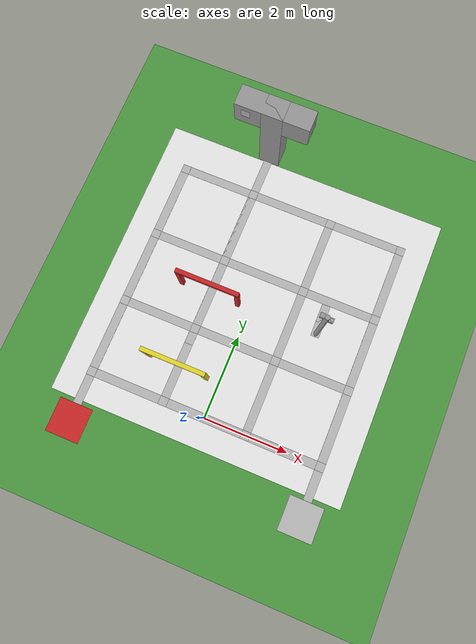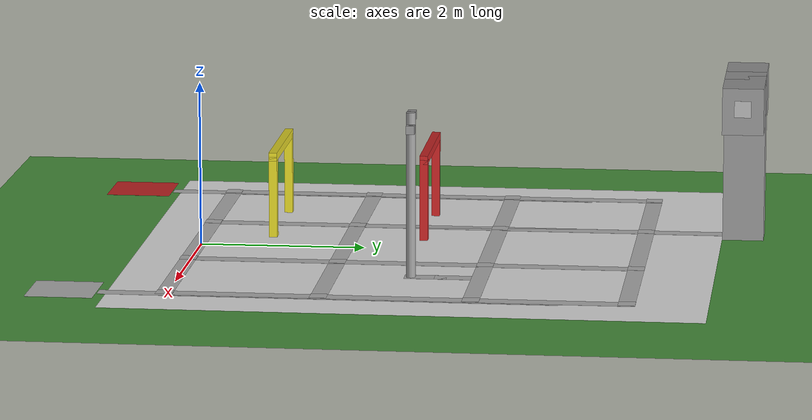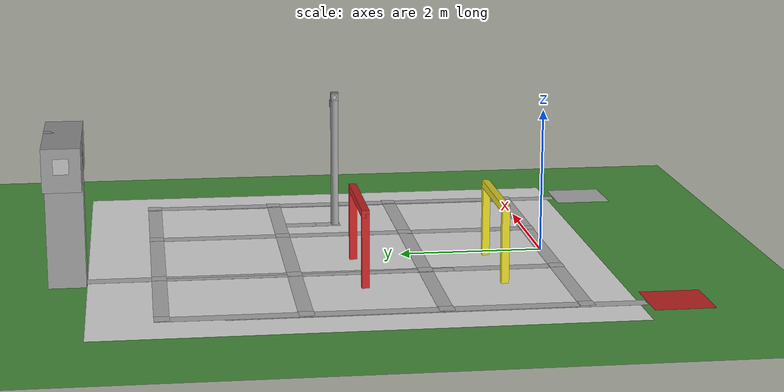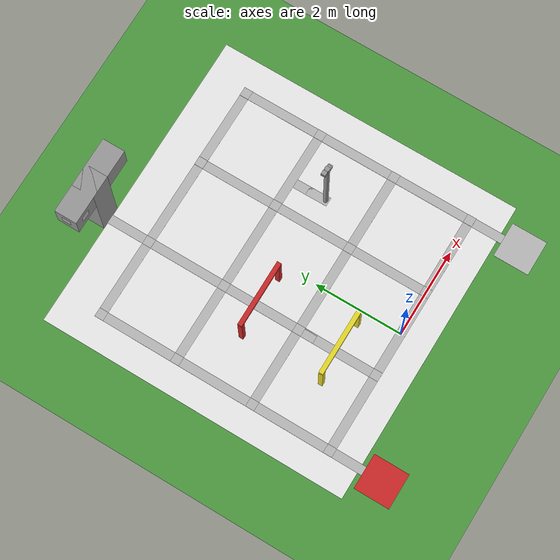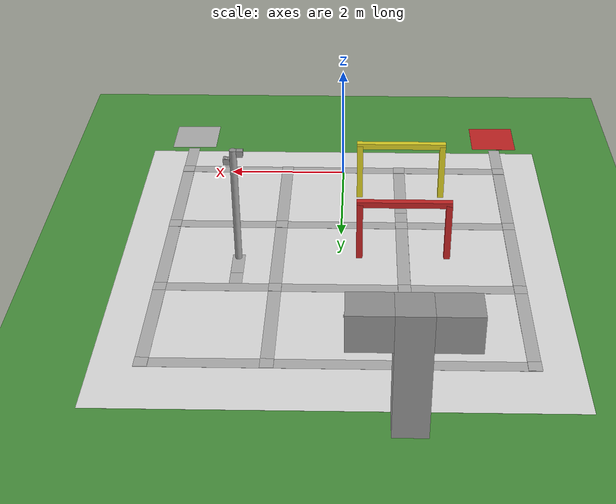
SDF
<sdf version="1.7">
 <world name="default">
  <physics type="ode">
   <ode>
    <solver>
     <type>quick</type>
     <iters>100</iters>
     <sor>1</sor>
     <use_dynamic_moi_rescaling>0</use_dynamic_moi_rescaling>
    </solver>
    <constraints>
     <cfm>0</cfm>
     <erp>0.9</erp>
     <contact_max_correcting_vel>0.1</contact_max_correcting_vel>
     <contact_surface_layer>0</contact_surface_layer>
    </constraints>
   </ode>
   <real_time_update_rate>1000</real_time_update_rate>
   <max_step_size>0.001</max_step_size>
   <real_time_factor>1</real_time_factor>
  </physics>
  <scene><ambient>0.95 0.95 0.95 1</ambient><background>0.3 0.3 0.3 1</background><shadows>0</shadows></scene>
  <model name="ground_plane">
   <static>1</static>
   <link name="link">
    <collision name="collision">
     <geometry><plane><normal>0 0 1</normal><size>500 500</size></plane></geometry>
     <surface><friction><ode><mu>1</mu><mu2>1</mu2></ode></friction></surface>
    </collision>
    <visual name="grass">
     <pose>0 0 0.01 0 -0 0</pose>
     <cast_shadows>0</cast_shadows>
     <geometry><plane><normal>0 0 1</normal><size>500 500</size></plane></geometry>
     <material>
      <script><uri>file://media/materials/scripts/gazebo.material</uri><name>Gazebo/Grass</name></script>
     </material>
    </visual>
   </link>
  </model>
  <light name="sun" type="directional">
   <pose>0 0 10 0 -0 0</pose>
   <diffuse>0.8 0.8 0.8 1</diffuse>
   <specular>0.2 0.2 0.2 1</specular>
   <attenuation>
    <range>1000</range>
    <constant>0.9</constant>
    <linear>0.01</linear>
    <quadratic>0.001</quadratic>
   </attenuation>
   <direction>-0.5 0.1 -0.9</direction>
   <spot><inner_angle>0</inner_angle><outer_angle>0</outer_angle><falloff>0</falloff></spot>
  </light>
  <model name="white_square">
   <frame name="white_square::__model__" attached_to="white_square::white_square_link">
    <pose relative_to="__model__">0 0 0 0 -0 0</pose>
   </frame>
   <static>1</static>
   <link name="white_square::white_square_link">
    <pose relative_to="white_square::__model__">0 0 0.001 0 -0 1.5708</pose>
    <visual name="visual_white_square">
     <cast_shadows>0</cast_shadows>
     <geometry><box><size>7 7 0.001</size></box></geometry>
     <material>
      <script>
       <uri>model://white_square/materials/scripts</uri>
       <uri>model://white_square/materials/textures</uri>
       <name>white_square/white_square</name>
      </script>
     </material>
    </visual>
   </link>
   <pose>0.015123 2.81106 0.03 0 -0 0</pose>
  </model>
  <model name="red_H">
   <frame name="red_cross::__model__" attached_to="red_cross::red_cross_link">
    <pose relative_to="__model__">0 0 0 0 -0 0</pose>
   </frame>
   <static>1</static>
   <link name="red_cross::red_cross_link">
    <pose relative_to="red_cross::__model__">0 0 0.001 0 -0 1.5708</pose>
    <visual name="visual_red_cross">
     <cast_shadows>0</cast_shadows>
     <geometry><box><size>0.8 0.8 0.001</size></box></geometry>
     <material>
      <script>
       <uri>model://red_cross/materials/scripts</uri>
       <uri>model://red_cross/materials/textures</uri>
       <name>red_cross/red_cross</name>
      </script>
     </material>
    </visual>
   </link>
   <pose>-2.785 -1.185 0.06 0 -0 0</pose>
  </model>
  <model name="blue_H">
   <frame name="H_azul::__model__" attached_to="H_azul::H_azul_link">
    <pose relative_to="__model__">0 0 0 0 -0 0</pose>
   </frame>
   <static>1</static>
   <link name="H_azul::H_azul_link">
    <pose relative_to="H_azul::__model__">0 0 0.001 0 -0 1.5708</pose>
    <visual name="visual_H_azul">
     <cast_shadows>0</cast_shadows>
     <geometry><box><size>0.8 0.8 0.001</size></box></geometry>
     <material>
      <script>
       <uri>model://H_azul/materials/scripts</uri>
       <uri>model://H_azul/materials/textures</uri>
       <name>H_azul/H_azul</name>
      </script>
     </material>
    </visual>
   </link>
   <pose>2.785 -1.185 0.06 0 -0 0</pose>
  </model>
  <model name="red_gate">
   <frame name="red_gate::__model__" attached_to="red_gate::link">
    <pose relative_to="__model__">0 0 0 0 -0 0</pose>
   </frame>
   <static>1</static>
   <link name="red_gate::link">
    <visual name="left_bar">
     <pose>-0.7 0 0.5 0 -0 0</pose>
     <geometry><box><size>0.1 0.1 1</size></box></geometry>
     <material>
      <script><uri>file://media/materials/scripts/gazebo.material</uri><name>Gazebo/Red</name></script>
     </material>
    </visual>
    <collision name="left_collision">
     <pose>-0.7 0 0.5 0 -0 0</pose>
     <geometry><box><size>0.1 0.1 1</size></box></geometry>
    </collision>
    <visual name="right_bar">
     <pose>0.7 0 0.5 0 -0 0</pose>
     <geometry><box><size>0.1 0.1 1</size></box></geometry>
     <material>
      <script><uri>file://media/materials/scripts/gazebo.material</uri><name>Gazebo/Red</name></script>
     </material>
    </visual>
    <collision name="right_collision">
     <pose>0.7 0 0.5 0 -0 0</pose>
     <geometry><box><size>0.1 0.1 1</size></box></geometry>
    </collision>
    <visual name="top_bar">
     <pose>0 0 1 0 -0 0</pose>
     <geometry><box><size>1.5 0.1 0.1</size></box></geometry>
     <material>
      <script><uri>file://media/materials/scripts/gazebo.material</uri><name>Gazebo/Red</name></script>
     </material>
    </visual>
    <collision name="top_collision">
     <pose>0 0 1 0 -0 0</pose>
     <geometry><box><size>1.5 0.1 0.1</size></box></geometry>
    </collision>
    <pose relative_to="red_gate::__model__">0 0 0 0 -0 0</pose>
   </link>
   <pose>-1 2.7 0.05 0 -0 0</pose>
  </model>
  <model name="yellow_gate">
   <frame name="yellow_gate::__model__" attached_to="yellow_gate::link">
    <pose relative_to="__model__">0 0 0 0 -0 0</pose>
   </frame>
   <static>1</static>
   <link name="yellow_gate::link">
    <visual name="left_bar">
     <pose>-0.7 0 0.5 0 -0 0</pose>
     <geometry><box><size>0.1 0.1 1</size></box></geometry>
     <material>
      <script><uri>file://media/materials/scripts/gazebo.material</uri><name>Gazebo/Yellow</name></script>
     </material>
    </visual>
    <collision name="left_collision">
     <pose>-0.7 0 0.5 0 -0 0</pose>
     <geometry><box><size>0.1 0.1 1</size></box></geometry>
    </collision>
    <visual name="right_bar">
     <pose>0.7 0 0.5 0 -0 0</pose>
     <geometry><box><size>0.1 0.1 1</size></box></geometry>
     <material>
      <script><uri>file://media/materials/scripts/gazebo.material</uri><name>Gazebo/Yellow</name></script>
     </material>
    </visual>
    <collision name="right_collision">
     <pose>0.7 0 0.5 0 -0 0</pose>
     <geometry><box><size>0.1 0.1 1</size></box></geometry>
    </collision>
    <visual name="top_bar">
     <pose>0 0 1 0 -0 0</pose>
     <geometry><box><size>1.5 0.1 0.1</size></box></geometry>
     <material>
      <script><uri>file://media/materials/scripts/gazebo.material</uri><name>Gazebo/Yellow</name></script>
     </material>
    </visual>
    <collision name="top_collision">
     <pose>0 0 1 0 -0 0</pose>
     <geometry><box><size>1.5 0.1 0.1</size></box></geometry>
    </collision>
    <pose relative_to="yellow_gate::__model__">0 0 0 0 -0 0</pose>
   </link>
   <pose>-1 0.85 0.05 0 -0 0</pose>
  </model>
  <model name="street_line0">
   <frame name="street::__model__" attached_to="street::street_link">
    <pose relative_to="__model__">0 0 0 0 -0 0</pose>
   </frame>
   <static>1</static>
   <link name="street::street_link">
    <pose relative_to="street::__model__">0 0 0.001 0 -0 1.5708</pose>
    <visual name="visual_street">
     <cast_shadows>0</cast_shadows>
     <geometry><box><size>5.37 0.2 0.001</size></box></geometry>
     <material>
      <script><uri>model://street/materials/scripts/model.material</uri><name>street/street_FIRA</name></script>
     </material>
    </visual>
    <geometry><box><size>5.37 0.2 1e-3</size></box></geometry>
   </link>
   <pose>0 5.37 0.05 0 -0 1.57</pose>
  </model>
  <model name="street_line1">
   <frame name="street::__model__" attached_to="street::street_link">
    <pose relative_to="__model__">0 0 0 0 -0 0</pose>
   </frame>
   <static>1</static>
   <link name="street::street_link">
    <pose relative_to="street::__model__">0 0 0.001 0 -0 1.5708</pose>
    <visual name="visual_street">
     <cast_shadows>0</cast_shadows>
     <geometry><box><size>5.37 0.2 0.001</size></box></geometry>
     <material>
      <script><uri>model://street/materials/scripts/model.material</uri><name>street/street_FIRA</name></script>
     </material>
    </visual>
    <geometry><box><size>5.37 0.2 1e-3</size></box></geometry>
   </link>
   <pose>0 3.57 0.05 0 -0 1.57</pose>
  </model>
  <model name="street_line2">
   <frame name="street::__model__" attached_to="street::street_link">
    <pose relative_to="__model__">0 0 0 0 -0 0</pose>
   </frame>
   <static>1</static>
   <link name="street::street_link">
    <pose relative_to="street::__model__">0 0 0.001 0 -0 1.5708</pose>
    <visual name="visual_street">
     <cast_shadows>0</cast_shadows>
     <geometry><box><size>5.37 0.2 0.001</size></box></geometry>
     <material>
      <script><uri>model://street/materials/scripts/model.material</uri><name>street/street_FIRA</name></script>
     </material>
    </visual>
    <geometry><box><size>5.37 0.2 1e-3</size></box></geometry>
   </link>
   <pose>0 1.8 0.05 0 -0 1.57</pose>
  </model>
  <model name="street_line3">
   <frame name="street::__model__" attached_to="street::street_link">
    <pose relative_to="__model__">0 0 0 0 -0 0</pose>
   </frame>
   <static>1</static>
   <link name="street::street_link">
    <pose relative_to="street::__model__">0 0 0.001 0 -0 1.5708</pose>
    <visual name="visual_street">
     <cast_shadows>0</cast_shadows>
     <geometry><box><size>5.37 0.2 0.001</size></box></geometry>
     <material>
      <script><uri>model://street/materials/scripts/model.material</uri><name>street/street_FIRA</name></script>
     </material>
    </visual>
    <geometry><box><size>5.37 0.2 1e-3</size></box></geometry>
   </link>
   <pose>0 0 0.05 0 -0 1.57</pose>
  </model>
  <model name="street_column0">
   <frame name="street::__model__" attached_to="street::street_link">
    <pose relative_to="__model__">0 0 0 0 -0 0</pose>
   </frame>
   <static>1</static>
   <link name="street::street_link">
    <pose relative_to="street::__model__">0 0 0.001 0 -0 1.5708</pose>
    <visual name="visual_street">
     <cast_shadows>0</cast_shadows>
     <geometry><box><size>5.37 0.2 0.001</size></box></geometry>
     <material>
      <script><uri>model://street/materials/scripts/model.material</uri><name>street/street_FIRA</name></script>
     </material>
    </visual>
    <geometry><box><size>5.37 0.2 1e-3</size></box></geometry>
   </link>
   <pose>-2.785 2.785 0.05 0 -0 0</pose>
  </model>
  <model name="street_column0ext">
   <frame name="street::__model__" attached_to="street::street_link">
    <pose relative_to="__model__">0 0 0 0 -0 0</pose>
   </frame>
   <static>1</static>
   <link name="street::street_link">
    <pose relative_to="street::__model__">0 0 0.001 0 -0 1.5708</pose>
    <visual name="visual_street">
     <cast_shadows>0</cast_shadows>
     <geometry><box><size>5.37 0.2 0.001</size></box></geometry>
     <material>
      <script><uri>model://street/materials/scripts/model.material</uri><name>street/street_FIRA</name></script>
     </material>
    </visual>
    <geometry><box><size>5.37 0.2 1e-3</size></box></geometry>
   </link>
   <pose>-2.785 1.9 0.04 0 -0 0</pose>
  </model>
  <model name="street_column1">
   <frame name="street::__model__" attached_to="street::street_link">
    <pose relative_to="__model__">0 0 0 0 -0 0</pose>
   </frame>
   <static>1</static>
   <link name="street::street_link">
    <pose relative_to="street::__model__">0 0 0.001 0 -0 1.5708</pose>
    <visual name="visual_street">
     <cast_shadows>0</cast_shadows>
     <geometry><box><size>5.37 0.2 0.001</size></box></geometry>
     <material>
      <script><uri>model://street/materials/scripts/model.material</uri><name>street/street_FIRA</name></script>
     </material>
    </visual>
    <geometry><box><size>5.37 0.2 1e-3</size></box></geometry>
   </link>
   <pose>-1 2.785 0.05 0 -0 0</pose>
  </model>
  <model name="street_column2">
   <frame name="street::__model__" attached_to="street::street_link">
    <pose relative_to="__model__">0 0 0 0 -0 0</pose>
   </frame>
   <static>1</static>
   <link name="street::street_link">
    <pose relative_to="street::__model__">0 0 0.001 0 -0 1.5708</pose>
    <visual name="visual_street">
     <cast_shadows>0</cast_shadows>
     <geometry><box><size>5.37 0.2 0.001</size></box></geometry>
     <material>
      <script><uri>model://street/materials/scripts/model.material</uri><name>street/street_FIRA</name></script>
     </material>
    </visual>
    <geometry><box><size>5.37 0.2 1e-3</size></box></geometry>
   </link>
   <pose>1 2.785 0.05 0 -0 0</pose>
  </model>
  <model name="street_column3">
   <frame name="street::__model__" attached_to="street::street_link">
    <pose relative_to="__model__">0 0 0 0 -0 0</pose>
   </frame>
   <static>1</static>
   <link name="street::street_link">
    <pose relative_to="street::__model__">0 0 0.001 0 -0 1.5708</pose>
    <visual name="visual_street">
     <cast_shadows>0</cast_shadows>
     <geometry><box><size>5.37 0.2 0.001</size></box></geometry>
     <material>
      <script><uri>model://street/materials/scripts/model.material</uri><name>street/street_FIRA</name></script>
     </material>
    </visual>
    <geometry><box><size>5.37 0.2 1e-3</size></box></geometry>
   </link>
   <pose>2.785 2.785 0.05 0 -0 0</pose>
  </model>
  <model name="street_column3ext">
   <frame name="street::__model__" attached_to="street::street_link">
    <pose relative_to="__model__">0 0 0 0 -0 0</pose>
   </frame>
   <static>1</static>
   <link name="street::street_link">
    <pose relative_to="street::__model__">0 0 0.001 0 -0 1.5708</pose>
    <visual name="visual_street">
     <cast_shadows>0</cast_shadows>
     <geometry><box><size>5.37 0.2 0.001</size></box></geometry>
     <material>
      <script><uri>model://street/materials/scripts/model.material</uri><name>street/street_FIRA</name></script>
     </material>
    </visual>
    <geometry><box><size>5.37 0.2 1e-3</size></box></geometry>
   </link>
   <pose>2.785 1.9 0.04 0 -0 0</pose>
  </model>
  <model name="qr_30">
   <frame name="qr_30::__model__" attached_to="qr_30::qr_30_link">
    <pose relative_to="__model__">0 0 0 0 -0 0</pose>
   </frame>
   <static>1</static>
   <link name="qr_30::qr_30_link">
    <pose relative_to="qr_30::__model__">0 0 0.001 0 -0 1.5708</pose>
    <visual name="visual_qr_30">
     <cast_shadows>0</cast_shadows>
     <geometry><box><size>0.2 0.2 0.001</size></box></geometry>
     <material>
      <script>
       <uri>model://qrs_FIRA24/qr_30/materials/scripts</uri>
       <uri>model://qrs_FIRA24/qr_30/materials/textures</uri>
       <name>qr_30/qr_30</name>
      </script>
     </material>
    </visual>
   </link>
   <pose>-2.785 0 0.06 0 -0 0</pose>
  </model>
  <model name="qr_31">
   <frame name="qr_31::__model__" attached_to="qr_31::qr_31_link">
    <pose relative_to="__model__">0 0 0 0 -0 0</pose>
   </frame>
   <static>1</static>
   <link name="qr_31::qr_31_link">
    <pose relative_to="qr_31::__model__">0 0 0.001 0 -0 1.5708</pose>
    <visual name="visual_qr_31">
     <cast_shadows>0</cast_shadows>
     <geometry><box><size>0.2 0.2 0.001</size></box></geometry>
     <material>
      <script>
       <uri>model://qrs_FIRA24/qr_31/materials/scripts</uri>
       <uri>model://qrs_FIRA24/qr_31/materials/textures</uri>
       <name>qr_31/qr_31</name>
      </script>
     </material>
    </visual>
   </link>
   <pose>-1 0 0.06 0 -0 0</pose>
  </model>
  <model name="qr_32">
   <frame name="qr_32::__model__" attached_to="qr_32::qr_32_link">
    <pose relative_to="__model__">0 0 0 0 -0 0</pose>
   </frame>
   <static>1</static>
   <link name="qr_32::qr_32_link">
    <pose relative_to="qr_32::__model__">0 0 0.001 0 -0 1.5708</pose>
    <visual name="visual_qr_32">
     <cast_shadows>0</cast_shadows>
     <geometry><box><size>0.2 0.2 0.001</size></box></geometry>
     <material>
      <script>
       <uri>model://qrs_FIRA24/qr_32/materials/scripts</uri>
       <uri>model://qrs_FIRA24/qr_32/materials/textures</uri>
       <name>qr_32/qr_32</name>
      </script>
     </material>
    </visual>
   </link>
   <pose>1 0 0.06 0 -0 0</pose>
  </model>
  <model name="qr_33">
   <frame name="qr_33::__model__" attached_to="qr_33::qr_33_link">
    <pose relative_to="__model__">0 0 0 0 -0 0</pose>
   </frame>
   <static>1</static>
   <link name="qr_33::qr_33_link">
    <pose relative_to="qr_33::__model__">0 0 0.001 0 -0 1.5708</pose>
    <visual name="visual_qr_33">
     <cast_shadows>0</cast_shadows>
     <geometry><box><size>0.2 0.2 0.001</size></box></geometry>
     <material>
      <script>
       <uri>model://qrs_FIRA24/qr_33/materials/scripts</uri>
       <uri>model://qrs_FIRA24/qr_33/materials/textures</uri>
       <name>qr_33/qr_33</name>
      </script>
     </material>
    </visual>
   </link>
   <pose>2.785 0 0.06 0 -0 0</pose>
  </model>
  <model name="qr_20">
   <frame name="qr_20::__model__" attached_to="qr_20::qr_20_link">
    <pose relative_to="__model__">0 0 0 0 -0 0</pose>
   </frame>
   <static>1</static>
   <link name="qr_20::qr_20_link">
    <pose relative_to="qr_20::__model__">0 0 0.001 0 -0 1.5708</pose>
    <visual name="visual_qr_20">
     <cast_shadows>0</cast_shadows>
     <geometry><box><size>0.2 0.2 0.001</size></box></geometry>
     <material>
      <script>
       <uri>model://qrs_FIRA24/qr_20/materials/scripts</uri>
       <uri>model://qrs_FIRA24/qr_20/materials/textures</uri>
       <name>qr_20/qr_20</name>
      </script>
     </material>
    </visual>
   </link>
   <pose>-2.785 1.8 0.06 0 -0 0</pose>
  </model>
  <model name="qr_21">
   <frame name="qr_21::__model__" attached_to="qr_21::qr_21_link">
    <pose relative_to="__model__">0 0 0 0 -0 0</pose>
   </frame>
   <static>1</static>
   <link name="qr_21::qr_21_link">
    <pose relative_to="qr_21::__model__">0 0 0.001 0 -0 1.5708</pose>
    <visual name="visual_qr_21">
     <cast_shadows>0</cast_shadows>
     <geometry><box><size>0.2 0.2 0.001</size></box></geometry>
     <material>
      <script>
       <uri>model://qrs_FIRA24/qr_21/materials/scripts</uri>
       <uri>model://qrs_FIRA24/qr_21/materials/textures</uri>
       <name>qr_21/qr_21</name>
      </script>
     </material>
    </visual>
   </link>
   <pose>-1 1.8 0.06 0 -0 0</pose>
  </model>
  <model name="qr_22">
   <frame name="qr_22::__model__" attached_to="qr_22::qr_22_link">
    <pose relative_to="__model__">0 0 0 0 -0 0</pose>
   </frame>
   <static>1</static>
   <link name="qr_22::qr_22_link">
    <pose relative_to="qr_22::__model__">0 0 0.001 0 -0 1.5708</pose>
    <visual name="visual_qr_22">
     <cast_shadows>0</cast_shadows>
     <geometry><box><size>0.2 0.2 0.001</size></box></geometry>
     <material>
      <script>
       <uri>model://qrs_FIRA24/qr_22/materials/scripts</uri>
       <uri>model://qrs_FIRA24/qr_22/materials/textures</uri>
       <name>qr_22/qr_22</name>
      </script>
     </material>
    </visual>
   </link>
   <pose>1 1.8 0.06 0 -0 0</pose>
  </model>
  <model name="qr_23">
   <frame name="qr_23::__model__" attached_to="qr_23::qr_23_link">
    <pose relative_to="__model__">0 0 0 0 -0 0</pose>
   </frame>
   <static>1</static>
   <link name="qr_23::qr_23_link">
    <pose relative_to="qr_23::__model__">0 0 0.001 0 -0 1.5708</pose>
    <visual name="visual_qr_23">
     <cast_shadows>0</cast_shadows>
     <geometry><box><size>0.2 0.2 0.001</size></box></geometry>
     <material>
      <script>
       <uri>model://qrs_FIRA24/qr_23/materials/scripts</uri>
       <uri>model://qrs_FIRA24/qr_23/materials/textures</uri>
       <name>qr_23/qr_23</name>
      </script>
     </material>
    </visual>
   </link>
   <pose>2.785 1.8 0.06 0 -0 0</pose>
  </model>
  <model name="qr_10">
   <frame name="qr_10::__model__" attached_to="qr_10::qr_10_link">
    <pose relative_to="__model__">0 0 0 0 -0 0</pose>
   </frame>
   <static>1</static>
   <link name="qr_10::qr_10_link">
    <pose relative_to="qr_10::__model__">0 0 0.001 0 -0 1.5708</pose>
    <visual name="visual_qr_10">
     <cast_shadows>0</cast_shadows>
     <geometry><box><size>0.2 0.2 0.001</size></box></geometry>
     <material>
      <script>
       <uri>model://qrs_FIRA24/qr_10/materials/scripts</uri>
       <uri>model://qrs_FIRA24/qr_10/materials/textures</uri>
       <name>qr_10/qr_10</name>
      </script>
     </material>
    </visual>
   </link>
   <pose>-2.785 3.57 0.06 0 -0 0</pose>
  </model>
  <model name="qr_11">
   <frame name="qr_11::__model__" attached_to="qr_11::qr_11_link">
    <pose relative_to="__model__">0 0 0 0 -0 0</pose>
   </frame>
   <static>1</static>
   <link name="qr_11::qr_11_link">
    <pose relative_to="qr_11::__model__">0 0 0.001 0 -0 1.5708</pose>
    <visual name="visual_qr_11">
     <cast_shadows>0</cast_shadows>
     <geometry><box><size>0.2 0.2 0.001</size></box></geometry>
     <material>
      <script>
       <uri>model://qrs_FIRA24/qr_11/materials/scripts</uri>
       <uri>model://qrs_FIRA24/qr_11/materials/textures</uri>
       <name>qr_11/qr_11</name>
      </script>
     </material>
    </visual>
   </link>
   <pose>-1 3.57 0.06 0 -0 0</pose>
  </model>
  <model name="qr_12">
   <frame name="qr_12::__model__" attached_to="qr_12::qr_12_link">
    <pose relative_to="__model__">0 0 0 0 -0 0</pose>
   </frame>
   <static>1</static>
   <link name="qr_12::qr_12_link">
    <pose relative_to="qr_12::__model__">0 0 0.001 0 -0 1.5708</pose>
    <visual name="visual_qr_12">
     <cast_shadows>0</cast_shadows>
     <geometry><box><size>0.2 0.2 0.001</size></box></geometry>
     <material>
      <script>
       <uri>model://qrs_FIRA24/qr_12/materials/scripts</uri>
       <uri>model://qrs_FIRA24/qr_12/materials/textures</uri>
       <name>qr_12/qr_12</name>
      </script>
     </material>
    </visual>
   </link>
   <pose>1 3.57 0.06 0 -0 0</pose>
  </model>
  <model name="qr_13">
   <frame name="qr_13::__model__" attached_to="qr_13::qr_13_link">
    <pose relative_to="__model__">0 0 0 0 -0 0</pose>
   </frame>
   <static>1</static>
   <link name="qr_13::qr_13_link">
    <pose relative_to="qr_13::__model__">0 0 0.001 0 -0 1.5708</pose>
    <visual name="visual_qr_13">
     <cast_shadows>0</cast_shadows>
     <geometry><box><size>0.2 0.2 0.001</size></box></geometry>
     <material>
      <script>
       <uri>model://qrs_FIRA24/qr_13/materials/scripts</uri>
       <uri>model://qrs_FIRA24/qr_13/materials/textures</uri>
       <name>qr_13/qr_13</name>
      </script>
     </material>
    </visual>
   </link>
   <pose>2.785 3.57 0.06 0 -0 0</pose>
  </model>
  <model name="qr_00">
   <frame name="qr_00::__model__" attached_to="qr_00::qr_00_link">
    <pose relative_to="__model__">0 0 0 0 -0 0</pose>
   </frame>
   <static>1</static>
   <link name="qr_00::qr_00_link">
    <pose relative_to="qr_00::__model__">0 0 0.001 0 -0 1.5708</pose>
    <visual name="visual_qr_00">
     <cast_shadows>0</cast_shadows>
     <geometry><box><size>0.2 0.2 0.001</size></box></geometry>
     <material>
      <script>
       <uri>model://qrs_FIRA24/qr_00/materials/scripts</uri>
       <uri>model://qrs_FIRA24/qr_00/materials/textures</uri>
       <name>qr_00/qr_00</name>
      </script>
     </material>
    </visual>
   </link>
   <pose>-2.785 5.37 0.06 0 -0 0</pose>
  </model>
  <model name="qr_01">
   <frame name="qr_01::__model__" attached_to="qr_01::qr_01_link">
    <pose relative_to="__model__">0 0 0 0 -0 0</pose>
   </frame>
   <static>1</static>
   <link name="qr_01::qr_01_link">
    <pose relative_to="qr_01::__model__">0 0 0.001 0 -0 1.5708</pose>
    <visual name="visual_qr_01">
     <cast_shadows>0</cast_shadows>
     <geometry><box><size>0.2 0.2 0.001</size></box></geometry>
     <material>
      <script>
       <uri>model://qrs_FIRA24/qr_01/materials/scripts</uri>
       <uri>model://qrs_FIRA24/qr_01/materials/textures</uri>
       <name>qr_01/qr_01</name>
      </script>
     </material>
    </visual>
   </link>
   <pose>-1 5.37 0.06 0 -0 0</pose>
  </model>
  <model name="qr_02">
   <frame name="qr_02::__model__" attached_to="qr_02::qr_02_link">
    <pose relative_to="__model__">0 0 0 0 -0 0</pose>
   </frame>
   <static>1</static>
   <link name="qr_02::qr_02_link">
    <pose relative_to="qr_02::__model__">0 0 0.001 0 -0 1.5708</pose>
    <visual name="visual_qr_02">
     <cast_shadows>0</cast_shadows>
     <geometry><box><size>0.2 0.2 0.001</size></box></geometry>
     <material>
      <script>
       <uri>model://qrs_FIRA24/qr_02/materials/scripts</uri>
       <uri>model://qrs_FIRA24/qr_02/materials/textures</uri>
       <name>qr_02/qr_02</name>
      </script>
     </material>
    </visual>
   </link>
   <pose>1 5.37 0.06 0 -0 0</pose>
  </model>
  <model name="qr_03">
   <frame name="qr_03::__model__" attached_to="qr_03::qr_03_link">
    <pose relative_to="__model__">0 0 0 0 -0 0</pose>
   </frame>
   <static>1</static>
   <link name="qr_03::qr_03_link">
    <pose relative_to="qr_03::__model__">0 0 0.001 0 -0 1.5708</pose>
    <visual name="visual_qr_03">
     <cast_shadows>0</cast_shadows>
     <geometry><box><size>0.2 0.2 0.001</size></box></geometry>
     <material>
      <script>
       <uri>model://qrs_FIRA24/qr_03/materials/scripts</uri>
       <uri>model://qrs_FIRA24/qr_03/materials/textures</uri>
       <name>qr_03/qr_03</name>
      </script>
     </material>
    </visual>
   </link>
   <pose>2.785 5.37 0.06 0 -0 0</pose>
  </model>
  <gravity>0 0 -9.8</gravity>
  <magnetic_field>6e-06 2.3e-05 -4.2e-05</magnetic_field>
  <atmosphere type="adiabatic"/>
  <spherical_coordinates>
   <surface_model>EARTH_WGS84</surface_model>
   <latitude_deg>0</latitude_deg>
   <longitude_deg>0</longitude_deg>
   <elevation>0</elevation>
   <heading_deg>0</heading_deg>
  </spherical_coordinates>
  <model name="FIRA_pole">
   <link name="link_2">
    <inertial>
     <mass>0.0126915</mass>
     <inertia>
      <ixx>0.00424056</ixx>
      <ixy>0</ixy>
      <ixz>0</ixz>
      <iyy>0.00424056</iyy>
      <iyz>0</iyz>
      <izz>2.014e-05</izz>
     </inertia>
    </inertial>
    <pose>0 0 -0.011903 0 -0 0</pose>
    <gravity>0</gravity>
    <visual name="visual">
     <geometry><cylinder><radius>0.056339</radius><length>2</length></cylinder></geometry>
     <material>
      <lighting>1</lighting>
      <script><uri>file://media/materials/scripts/gazebo.material</uri><name>Gazebo/Grey</name></script>
      <shader type="pixel"><normal_map>__default__</normal_map></shader>
      <ambient>0.3 0.3 0.3 1</ambient>
      <diffuse>0.7 0.7 0.7 1</diffuse>
      <specular>0.01 0.01 0.01 1</specular>
      <emissive>0 0 0 1</emissive>
     </material>
    </visual>
    <collision name="collision">
     <geometry><cylinder><radius>0.056339</radius><length>2</length></cylinder></geometry>
     <surface>
      <friction>
       <ode><mu>1</mu><mu2>1</mu2><fdir1>0 0 0</fdir1><slip1>0</slip1><slip2>0</slip2></ode>
       <torsional>
        <coefficient>1</coefficient>
        <patch_radius>0</patch_radius>
        <surface_radius>0</surface_radius>
        <use_patch_radius>1</use_patch_radius>
        <ode><slip>0</slip></ode>
       </torsional>
      </friction>
      <bounce><restitution_coefficient>0</restitution_coefficient><threshold>1e+06</threshold></bounce>
      <contact>
       <collide_without_contact>0</collide_without_contact>
       <collide_without_contact_bitmask>1</collide_without_contact_bitmask>
       <collide_bitmask>1</collide_bitmask>
       <ode>
        <soft_cfm>0</soft_cfm>
        <soft_erp>0.2</soft_erp>
        <kp>1e+13</kp>
        <kd>1</kd>
        <max_vel>0.01</max_vel>
        <min_depth>0</min_depth>
       </ode>
       <bullet>
        <split_impulse>1</split_impulse>
        <split_impulse_penetration_threshold>-0.01</split_impulse_penetration_threshold>
        <soft_cfm>0</soft_cfm>
        <soft_erp>0.2</soft_erp>
        <kp>1e+13</kp>
        <kd>1</kd>
       </bullet>
      </contact>
     </surface>
    </collision>
   </link>
   <link name="link_7">
    <inertial>
     <mass>0.00202505</mass>
     <inertia>
      <ixx>5.04e-06</ixx>
      <ixy>0</ixy>
      <ixz>0</ixz>
      <iyy>5.34e-06</iyy>
      <iyz>0</iyz>
      <izz>6.02e-06</izz>
     </inertia>
    </inertial>
    <pose>0.103108 -0.004851 0.939738 0 -0 0</pose>
    <visual name="visual">
     <geometry><box><size>0.1 0.1 0.1</size></box></geometry>
     <material>
      <lighting>1</lighting>
      <script><uri>file://media/materials/scripts/gazebo.material</uri><name>Gazebo/Grey</name></script>
      <shader type="pixel"><normal_map>__default__</normal_map></shader>
      <ambient>0.3 0.3 0.3 1</ambient>
      <diffuse>0.7 0.7 0.7 1</diffuse>
      <specular>0.01 0.01 0.01 1</specular>
      <emissive>0 0 0 1</emissive>
     </material>
    </visual>
    <collision name="collision">
     <geometry><box><size>0.136901 0.130094 0.113701</size></box></geometry>
     <surface>
      <friction>
       <ode><mu>1</mu><mu2>1</mu2><fdir1>0 0 0</fdir1><slip1>0</slip1><slip2>0</slip2></ode>
       <torsional>
        <coefficient>1</coefficient>
        <patch_radius>0</patch_radius>
        <surface_radius>0</surface_radius>
        <use_patch_radius>1</use_patch_radius>
        <ode><slip>0</slip></ode>
       </torsional>
      </friction>
      <bounce><restitution_coefficient>0</restitution_coefficient><threshold>1e+06</threshold></bounce>
      <contact>
       <collide_without_contact>0</collide_without_contact>
       <collide_without_contact_bitmask>1</collide_without_contact_bitmask>
       <collide_bitmask>1</collide_bitmask>
       <ode>
        <soft_cfm>0</soft_cfm>
        <soft_erp>0.2</soft_erp>
        <kp>1e+13</kp>
        <kd>1</kd>
        <max_vel>0.01</max_vel>
        <min_depth>0</min_depth>
       </ode>
       <bullet>
        <split_impulse>1</split_impulse>
        <split_impulse_penetration_threshold>-0.01</split_impulse_penetration_threshold>
        <soft_cfm>0</soft_cfm>
        <soft_erp>0.2</soft_erp>
        <kp>1e+13</kp>
        <kd>1</kd>
       </bullet>
      </contact>
     </surface>
    </collision>
   </link>
   <link name="link_7_clone_0">
    <inertial>
     <mass>0.00202505</mass>
     <inertia>
      <ixx>5.04e-06</ixx>
      <ixy>0</ixy>
      <ixz>0</ixz>
      <iyy>5.34e-06</iyy>
      <iyz>0</iyz>
      <izz>6.02e-06</izz>
     </inertia>
    </inertial>
    <pose>-0.100902 -0.008993 0.802997 0 -0 0</pose>
    <visual name="visual">
     <geometry><box><size>0.1 0.1 0.1</size></box></geometry>
     <material>
      <lighting>1</lighting>
      <script><uri>file://media/materials/scripts/gazebo.material</uri><name>Gazebo/Grey</name></script>
      <shader type="pixel"><normal_map>__default__</normal_map></shader>
      <ambient>0.3 0.3 0.3 1</ambient>
      <diffuse>0.7 0.7 0.7 1</diffuse>
      <specular>0.01 0.01 0.01 1</specular>
      <emissive>0 0 0 1</emissive>
     </material>
    </visual>
    <collision name="collision">
     <geometry><box><size>0.1 0.1 0.1</size></box></geometry>
     <surface>
      <friction>
       <ode><mu>1</mu><mu2>1</mu2><fdir1>0 0 0</fdir1><slip1>0</slip1><slip2>0</slip2></ode>
       <torsional>
        <coefficient>1</coefficient>
        <patch_radius>0</patch_radius>
        <surface_radius>0</surface_radius>
        <use_patch_radius>1</use_patch_radius>
        <ode><slip>0</slip></ode>
       </torsional>
      </friction>
      <bounce><restitution_coefficient>0</restitution_coefficient><threshold>1e+06</threshold></bounce>
      <contact>
       <collide_without_contact>0</collide_without_contact>
       <collide_without_contact_bitmask>1</collide_without_contact_bitmask>
       <collide_bitmask>1</collide_bitmask>
       <ode>
        <soft_cfm>0</soft_cfm>
        <soft_erp>0.2</soft_erp>
        <kp>1e+13</kp>
        <kd>1</kd>
        <max_vel>0.01</max_vel>
        <min_depth>0</min_depth>
       </ode>
       <bullet>
        <split_impulse>1</split_impulse>
        <split_impulse_penetration_threshold>-0.01</split_impulse_penetration_threshold>
        <soft_cfm>0</soft_cfm>
        <soft_erp>0.2</soft_erp>
        <kp>1e+13</kp>
        <kd>1</kd>
       </bullet>
      </contact>
     </surface>
    </collision>
   </link>
   <model name="qr_Victim_6">
    <static>1</static>
    <link name="qr_Victim_6_link">
     <pose>0 0 0.001 0 -0 1.5708</pose>
     <visual name="visual_qr_Victim_6">
      <cast_shadows>0</cast_shadows>
      <geometry><box><size>0.05 0.05 0.001</size></box></geometry>
      <material>
       <script>
        <uri>model://qrs_FIRA24/qr_Victim_6/materials/scripts</uri>
        <uri>model://qrs_FIRA24/qr_Victim_6/materials/textures</uri>
        <name>qr_Victim_6/qr_Victim_6</name>
       </script>
      </material>
     </visual>
    </link>
    <pose>0.153877 -0.01017 0.942722 3.14159 1.55078 3.14159</pose>
   </model>
   <model name="qr_Victim_7">
    <static>1</static>
    <link name="qr_Victim_7_link">
     <pose>0 0 0.001 0 -0 1.5708</pose>
     <visual name="visual_qr_Victim_7">
      <cast_shadows>0</cast_shadows>
      <geometry><box><size>0.05 0.05 0.001</size></box></geometry>
      <material>
       <script>
        <uri>model://qrs_FIRA24/qr_Victim_7/materials/scripts</uri>
        <uri>model://qrs_FIRA24/qr_Victim_7/materials/textures</uri>
        <name>qr_Victim_7/qr_Victim_7</name>
       </script>
      </material>
     </visual>
    </link>
    <pose>-0.104629 -0.01271 0.855069 3.13255 -0.00487 -1.56498</pose>
   </model>
   <static>1</static>
   <pose>1.6341 2.74746 1.02839 0 -0 3.13935</pose>
  </model>
  <model name="FIRA_building">
   <link name="link_0">
    <inertial>
     <mass>0.583841</mass>
     <inertia>
      <ixx>0.0973069</ixx>
      <ixy>0</ixy>
      <ixz>0</ixz>
      <iyy>0.0652376</iyy>
      <iyz>0</iyz>
      <izz>0.0652376</izz>
     </inertia>
     <pose>0 0 2 0 -0 0</pose>
    </inertial>
    <pose>-0.942835 -0.127491 -0 0 -0 0</pose>
    <visual name="visual">
     <geometry><box><size>0.5 0.5 2</size></box></geometry>
     <material>
      <lighting>1</lighting>
      <script><uri>file://media/materials/scripts/gazebo.material</uri><name>Gazebo/Grey</name></script>
      <shader type="pixel"><normal_map>__default__</normal_map></shader>
      <ambient>0.3 0.3 0.3 1</ambient>
      <diffuse>0.7 0.7 0.7 1</diffuse>
      <specular>0.01 0.01 0.01 1</specular>
      <emissive>0 0 0 1</emissive>
     </material>
    </visual>
    <collision name="collision">
     <geometry><box><size>0.583834 1 1</size></box></geometry>
     <surface>
      <friction>
       <ode><mu>1</mu><mu2>1</mu2><fdir1>0 0 0</fdir1><slip1>0</slip1><slip2>0</slip2></ode>
       <torsional>
        <coefficient>1</coefficient>
        <patch_radius>0</patch_radius>
        <surface_radius>0</surface_radius>
        <use_patch_radius>1</use_patch_radius>
        <ode><slip>0</slip></ode>
       </torsional>
      </friction>
      <bounce><restitution_coefficient>0</restitution_coefficient><threshold>1e+06</threshold></bounce>
      <contact>
       <collide_without_contact>0</collide_without_contact>
       <collide_without_contact_bitmask>1</collide_without_contact_bitmask>
       <collide_bitmask>1</collide_bitmask>
       <ode>
        <soft_cfm>0</soft_cfm>
        <soft_erp>0.2</soft_erp>
        <kp>1e+13</kp>
        <kd>1</kd>
        <max_vel>0.01</max_vel>
        <min_depth>0</min_depth>
       </ode>
       <bullet>
        <split_impulse>1</split_impulse>
        <split_impulse_penetration_threshold>-0.01</split_impulse_penetration_threshold>
        <soft_cfm>0</soft_cfm>
        <soft_erp>0.2</soft_erp>
        <kp>1e+13</kp>
        <kd>1</kd>
       </bullet>
      </contact>
     </surface>
    </collision>
   </link>
   <link name="link_1_clone">
    <inertial>
     <mass>1.18726</mass>
     <inertia>
      <ixx>0.211136</ixx>
      <ixy>0</ixy>
      <ixz>0</ixz>
      <iyy>0.482851</iyy>
      <iyz>0</iyz>
      <izz>0.321095</izz>
     </inertia>
    </inertial>
    <pose>-0.576279 -0.127491 0.716297 0 -0 0</pose>
    <visual name="visual">
     <pose>-0.366556 0 0 0 -0 0</pose>
     <geometry><box><size>1.73086 0.499 0.567406</size></box></geometry>
     <material>
      <lighting>1</lighting>
      <script><uri>file://media/materials/scripts/gazebo.material</uri><name>Gazebo/Grey</name></script>
      <shader type="pixel"><normal_map>__default__</normal_map></shader>
      <ambient>0.3 0.3 0.3 1</ambient>
      <diffuse>0.7 0.7 0.7 1</diffuse>
      <specular>0.01 0.01 0.01 1</specular>
      <emissive>0 0 0 1</emissive>
     </material>
    </visual>
    <collision name="collision">
     <geometry><box><size>1.73086 0.499551 1.37276</size></box></geometry>
     <surface>
      <friction>
       <ode><mu>1</mu><mu2>1</mu2><fdir1>0 0 0</fdir1><slip1>0</slip1><slip2>0</slip2></ode>
       <torsional>
        <coefficient>1</coefficient>
        <patch_radius>0</patch_radius>
        <surface_radius>0</surface_radius>
        <use_patch_radius>1</use_patch_radius>
        <ode><slip>0</slip></ode>
       </torsional>
      </friction>
      <bounce><restitution_coefficient>0</restitution_coefficient><threshold>1e+06</threshold></bounce>
      <contact>
       <collide_without_contact>0</collide_without_contact>
       <collide_without_contact_bitmask>1</collide_without_contact_bitmask>
       <collide_bitmask>1</collide_bitmask>
       <ode>
        <soft_cfm>0</soft_cfm>
        <soft_erp>0.2</soft_erp>
        <kp>1e+13</kp>
        <kd>1</kd>
        <max_vel>0.01</max_vel>
        <min_depth>0</min_depth>
       </ode>
       <bullet>
        <split_impulse>1</split_impulse>
        <split_impulse_penetration_threshold>-0.01</split_impulse_penetration_threshold>
        <soft_cfm>0</soft_cfm>
        <soft_erp>0.2</soft_erp>
        <kp>1e+13</kp>
        <kd>1</kd>
       </bullet>
      </contact>
     </surface>
    </collision>
   </link>
   <model name="qr_Victim_1">
    <static>1</static>
    <link name="qr_Victim_1_link">
     <pose>0 0 0.001 0 -0 1.5708</pose>
     <visual name="visual_qr_Victim_1">
      <cast_shadows>0</cast_shadows>
      <geometry><box><size>0.2 0.2 0.001</size></box></geometry>
      <material>
       <script>
        <uri>model://qrs_FIRA24/qr_Victim_1/materials/scripts</uri>
        <uri>model://qrs_FIRA24/qr_Victim_1/materials/textures</uri>
        <name>qr_Victim_1/qr_Victim_1</name>
       </script>
      </material>
     </visual>
    </link>
    <pose>-1.81646 -0.125579 0.769645 0 -1.55321 0</pose>
   </model>
   <model name="qr_Victim_2">
    <static>1</static>
    <link name="qr_Victim_2_link">
     <pose>0 0 0.001 0 -0 1.5708</pose>
     <visual name="visual_qr_Victim_2">
      <cast_shadows>0</cast_shadows>
      <geometry><box><size>0.2 0.2 0.001</size></box></geometry>
      <material>
       <script>
        <uri>model://qrs_FIRA24/qr_Victim_2/materials/scripts</uri>
        <uri>model://qrs_FIRA24/qr_Victim_2/materials/textures</uri>
        <name>qr_Victim_2/qr_Victim_2</name>
       </script>
      </material>
     </visual>
    </link>
    <pose>-0.063176 -0.131087 0.750636 0 1.55267 0</pose>
   </model>
   <model name="qr_Victim_3">
    <static>1</static>
    <link name="qr_Victim_3_link">
     <pose>0 0 0.001 0 -0 1.5708</pose>
     <visual name="visual_qr_Victim_3">
      <cast_shadows>0</cast_shadows>
      <geometry><box><size>0.2 0.2 0.001</size></box></geometry>
      <material>
       <script>
        <uri>model://qrs_FIRA24/qr_Victim_3/materials/scripts</uri>
        <uri>model://qrs_FIRA24/qr_Victim_3/materials/textures</uri>
        <name>qr_Victim_3/qr_Victim_3</name>
       </script>
      </material>
     </visual>
    </link>
    <pose>-1.53922 -0.39629 0.800158 1.54332 -0 0</pose>
   </model>
   <joint name="link_0_JOINT_0" type="fixed">
    <parent>link_0</parent>
    <child>link_1_clone</child>
    <physics>
     <ode><limit><cfm>0</cfm><erp>0.2</erp></limit><suspension><cfm>0</cfm><erp>0.2</erp></suspension></ode>
    </physics>
   </joint>
   <joint name="link_0_JOINT_5" type="fixed">
    <parent>link_0</parent>
    <child>link_1_clone</child>
    <physics>
     <ode><limit><cfm>0</cfm><erp>0.2</erp></limit><suspension><cfm>0</cfm><erp>0.2</erp></suspension></ode>
    </physics>
   </joint>
   <joint name="link_1_clone_JOINT_0" type="revolute">
    <parent>link_1_clone</parent>
    <child>link_0</child>
    <axis>
     <xyz>1 0 0</xyz>
     <limit>
      <lower>-1.79769e+308</lower>
      <upper>1.79769e+308</upper>
      <effort>-1</effort>
      <velocity>-1</velocity>
     </limit>
     <dynamics>
      <spring_reference>0</spring_reference>
      <spring_stiffness>0</spring_stiffness>
      <damping>0</damping>
     </dynamics>
    </axis>
    <physics>
     <ode><limit><cfm>0</cfm><erp>0.2</erp></limit><suspension><cfm>0</cfm><erp>0.2</erp></suspension></ode>
    </physics>
   </joint>
   <joint name="link_1_clone_JOINT_1" type="prismatic">
    <parent>link_1_clone</parent>
    <child>link_0</child>
    <axis>
     <xyz>0 0 1</xyz>
     <limit>
      <lower>-1.79769e+308</lower>
      <upper>1.79769e+308</upper>
      <effort>-1</effort>
      <velocity>-1</velocity>
     </limit>
     <dynamics>
      <spring_reference>0</spring_reference>
      <spring_stiffness>0</spring_stiffness>
      <damping>0</damping>
     </dynamics>
    </axis>
    <physics>
     <ode><limit><cfm>0</cfm><erp>0.2</erp></limit><suspension><cfm>0</cfm><erp>0.2</erp></suspension></ode>
    </physics>
   </joint>
   <joint name="link_1_clone_JOINT_2" type="fixed">
    <parent>link_1_clone</parent>
    <child>link_0</child>
    <physics>
     <ode><limit><cfm>0</cfm><erp>0.2</erp></limit><suspension><cfm>0</cfm><erp>0.2</erp></suspension></ode>
    </physics>
   </joint>
   <static>1</static>
   <pose>-0.038178 6.69332 1.0403 0 -0 0</pose>
  </model>
  <model name="street_column1_clone">
   <frame name="street::__model__" attached_to="street::street_link">
    <pose relative_to="__model__">0 0 0 0 -0 0</pose>
   </frame>
   <static>1</static>
   <link name="street::street_link">
    <pose relative_to="street::__model__">0 0 0.001 0 -0 1.5708</pose>
    <visual name="visual_street">
     <cast_shadows>0</cast_shadows>
     <geometry><box><size>5.37 0.2 0.001</size></box></geometry>
     <material>
      <script><uri>model://street/materials/scripts/model.material</uri><name>street/street_FIRA</name></script>
     </material>
    </visual>
    <geometry><box><size>5.37 0.2 1e-3</size></box></geometry>
   </link>
   <pose>-0.998586 4.099 0.05 0 -0 0</pose>
  </model>
  <model name="small_street_0">
   <static>1</static>
   <link name="small_street::small_street_link">
    <visual name="visual_small_street">
     <cast_shadows>0</cast_shadows>
     <geometry><box><size>0.5 0.2 0.001</size></box></geometry>
     <material>
      <script>
       <uri>model://small_street/materials/scripts/model.material</uri>
       <name>small_street/small_street</name>
      </script>
     </material>
    </visual>
   </link>
   <pose>1.62503 3.27788 0.040142 0 0 -1.56113</pose>
  </model>
  <model name="small_street_0_clone">
   <static>1</static>
   <link name="small_street::small_street_link">
    <visual name="visual_small_street">
     <cast_shadows>0</cast_shadows>
     <geometry><box><size>0.5 0.2 0.001</size></box></geometry>
     <material>
      <script>
       <uri>model://small_street/materials/scripts/model.material</uri>
       <name>small_street/small_street</name>
      </script>
     </material>
    </visual>
   </link>
   <pose>1.6275 2.9224 0.040142 0 0 -1.55658</pose>
  </model>
 </world>
</sdf>
